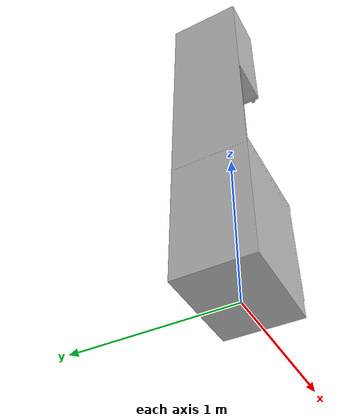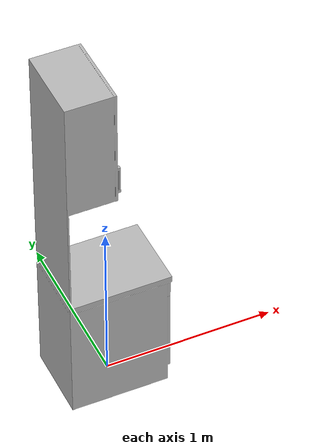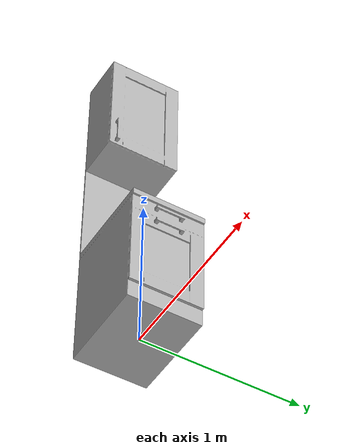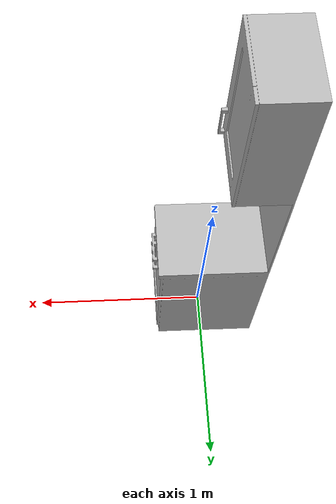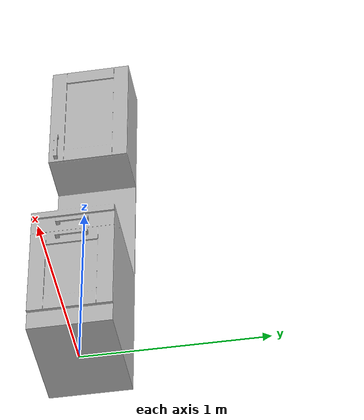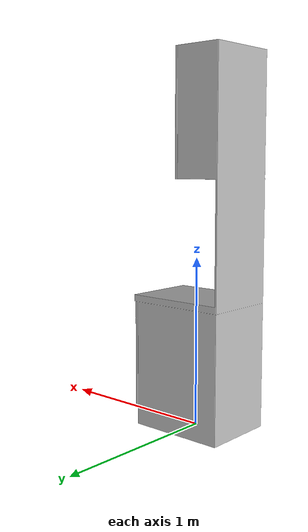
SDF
<?xml version='1.0'?>
<sdf version='1.4'>
  <model name='603'>
    <pose>0 0 0 0 0 0</pose>
    <static>true</static>
    <link name='link'>
      <collision name='collision'>
        <pose>0 0 0 0 0 0</pose>
        <geometry>
          <box>
            <size>0.62 0.45 2</size>
          </box>
        </geometry>
      </collision>
      <visual name='visual'>
        <pose>0 0 0 0 0 0</pose>
        <geometry>
          <mesh><uri>model://603/603.dae</uri></mesh>
        </geometry>
      </visual>
    </link>
  </model>
</sdf>
